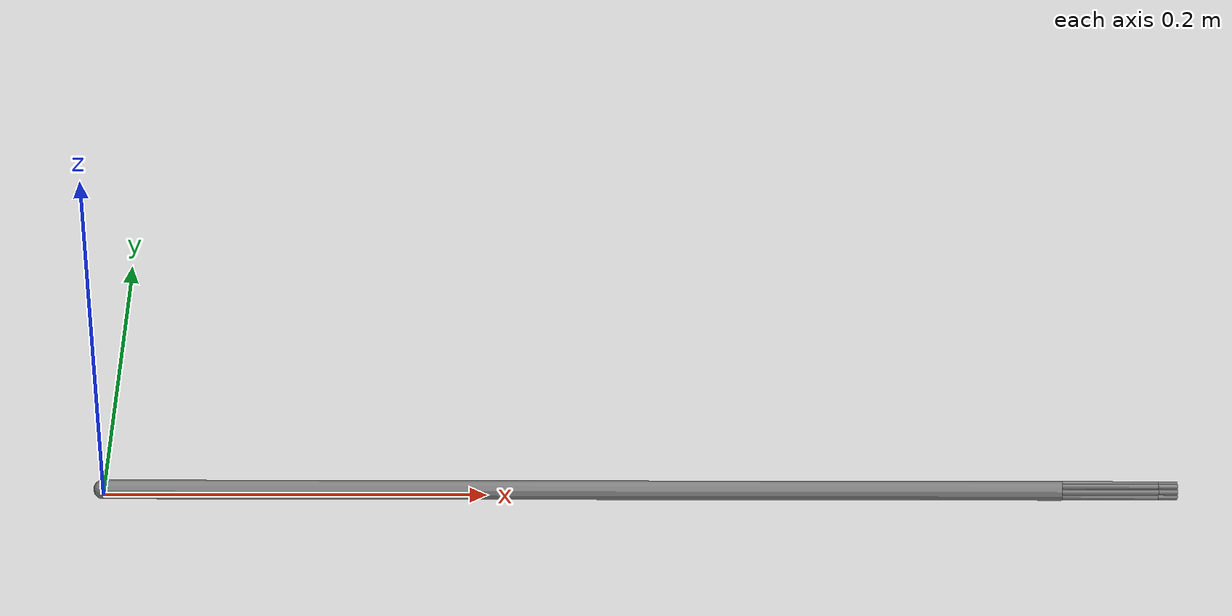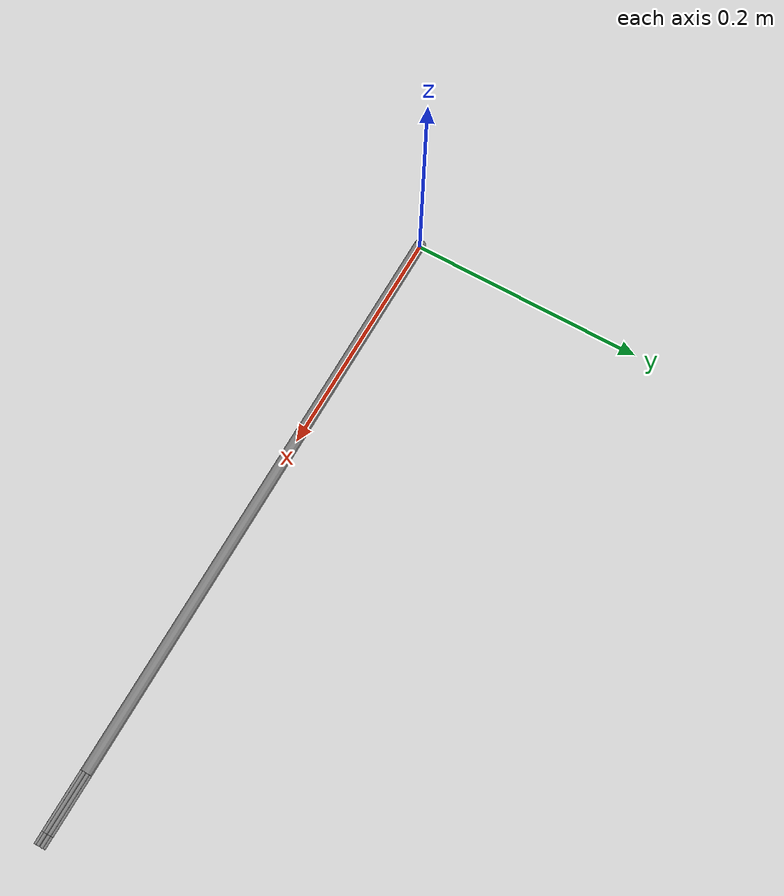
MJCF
<mujoco model="Assem_cable">
  <default>
    <default class="robot">
      <default class="motor">
        <joint />
        <motor />
      </default>
      <default class="visual">
        <geom material="visualgeom" contype="0" conaffinity="0" group="2" />
      </default>
      <default class="collision">
        <geom condim="3" contype="0" conaffinity="1" priority="1" group="1" solref="0.005 1" solimp="0.99 0.999 1e-05" friction="1 0.01 0.01" />
      </default>
    </default>
  </default>

  <compiler angle="radian" />

  <asset>
    <material name="black" rgba="0 0 0 1" />
    <material name="white" rgba="1 1 1 1" />
    <material name="copper" rgba="1 0.752941176470588 0.752941176470588 1" />
    <material name="brown" rgba="0.729411764705882 0.356862745098039 0.0235294117647059 1" />
    <material name="green" rgba="0 0.752941176470588 0 1" />
    <material name="red" rgba="1 0 0 1" />
    <material name="yellow" rgba="1 1 0 1" />
    <material name="blue" rgba="0 0.313725490196078 1 1" />

    <mesh name="base_link.STL" file="meshes/base_link.STL" />
    <mesh name="white_Link.STL" file="meshes/white_Link.STL" />
    <mesh name="c_white_Link.STL" file="meshes/c_white_Link.STL" />
    <mesh name="brown_Link.STL" file="meshes/brown_Link.STL" />
    <mesh name="c_brown_Link.STL" file="meshes/c_brown_Link.STL" />
    <mesh name="green_Link.STL" file="meshes/green_Link.STL" />
    <mesh name="c_green_Link.STL" file="meshes/c_green_Link.STL" />
    <mesh name="red_Link.STL" file="meshes/red_Link.STL" />
    <mesh name="c_red_Link.STL" file="meshes/c_red_Link.STL" />
    <mesh name="yellow_Link.STL" file="meshes/yellow_Link.STL" />
    <mesh name="c_yellow_Link.STL" file="meshes/c_yellow_Link.STL" />
    <mesh name="blue_Link.STL" file="meshes/blue_Link.STL" />
    <mesh name="c_blue_Link.STL" file="meshes/c_blue_Link.STL" />
    <mesh name="black_Link.STL" file="meshes/black_Link.STL" />
    <mesh name="c_black_Link.STL" file="meshes/c_black_Link.STL" />
  </asset>

  <worldbody>
    <body name="base_link" pos="0.00000000 0.00000000 0.00341225" quat="1 0 0 0" childclass="robot">
      <freejoint name="floating_base" />
      <geom name="base_link_collision" pos="0 0 0" quat="1.0 0.0 0.0 0.0" type="mesh" mesh="base_link.STL" class="collision" />
      <geom name="base_link_visual" pos="0 0 0" quat="1.0 0.0 0.0 0.0" material="black" type="mesh" mesh="base_link.STL" class="visual" />
      <body name="white_Link" pos="0.5 0.00218221437473327 0.00273641013422833" quat="0.8462268532257802 0.5328227781163207 0.0 0.0">
        <joint name="white_joint" type="hinge" ref="0.0" class="motor" axis="1 0 0" />
        <inertial pos="0.025 -4.3368E-19 -2.1684E-19" quat="1.0 0.0 0.0 0.0" mass="0.00035343" diaginertia="3.9761e-10 7.383e-08 7.383e-08" />
        <geom name="white_Link_collision" pos="0 0 0" quat="1.0 0.0 0.0 0.0" type="mesh" mesh="white_Link.STL" class="collision" />
        <geom name="white_Link_visual" pos="0 0 0" quat="1.0 0.0 0.0 0.0" material="white" type="mesh" mesh="white_Link.STL" class="visual" />
        <body name="c_white_Link" pos="0.05 0 0" quat="0.9751353459148078 0.22161014676139754 0.0 0.0">
          <joint name="c_white_joint" type="hinge" ref="0.0" class="motor" axis="1 0 0" />
          <inertial pos="0.0049865416098227 -2.68882138776405E-17 1.0842021724855E-17" quat="1.0 0.0 0.0 0.0" mass="6.14076644021682E-05" diaginertia="6.00447326004955e-11 5.39061211502602e-10 5.39061211502602e-10" />
          <geom name="c_white_Link_collision" pos="0 0 0" quat="1.0 0.0 0.0 0.0" type="mesh" mesh="c_white_Link.STL" class="collision" />
          <geom name="c_white_Link_visual" pos="0 0 0" quat="1.0 0.0 0.0 0.0" material="copper" type="mesh" mesh="c_white_Link.STL" class="visual" />
        </body>
      </body>
      <body name="brown_Link" pos="0.5 0.0035 0" quat="0.955512291536803 -0.294951285337236 0.0 0.0">
        <joint name="brown_joint" type="hinge" ref="0.0" class="motor" axis="1 0 0" />
        <inertial pos="0.025 -8.19656842399041E-17 8.23993651088983E-18" quat="1.0 0.0 0.0 0.0" mass="0.000353429173528853" diaginertia="3.9760782021996e-10 7.38298817286211e-08 7.38298817286211e-08" />
        <geom name="brown_Link_collision" pos="0 0 0" quat="1.0 0.0 0.0 0.0" type="mesh" mesh="brown_Link.STL" class="collision" />
        <geom name="brown_Link_visual" pos="0 0 0" quat="1.0 0.0 0.0 0.0" material="brown" type="mesh" mesh="brown_Link.STL" class="visual" />
        <body name="c_brown_Link" pos="0.05 0 0" quat="0.6008837159724685 -0.7993364497376044 0.0 0.0">
          <joint name="c_brown_joint" type="hinge" ref="0.0" class="motor" axis="1 0 0" />
          <inertial pos="0.00498654160982259 -5.5944832100252E-17 2.03830008427275E-17" quat="1.0 0.0 0.0 0.0" mass="6.14076644021682E-05" diaginertia="6.00447326004955e-11 5.39061211502601e-10 5.39061211502602e-10" />
          <geom name="c_brown_Link_collision" pos="0 0 0" quat="1.0 0.0 0.0 0.0" type="mesh" mesh="c_brown_Link.STL" class="collision" />
          <geom name="c_brown_Link_visual" pos="0 0 0" quat="1.0 0.0 0.0 0.0" material="copper" type="mesh" mesh="c_brown_Link.STL" class="visual" />
        </body>
      </body>
      <body name="green_Link" pos="0.5 0.00218221389713953 -0.00273641051509658" quat="0.7071067811865462 0.7071067811865488 0.0 0.0">
        <joint name="green_joint" type="hinge" ref="0.0" class="motor" axis="1 0 0" />
        <inertial pos="0.025 0 0" quat="1.0 0.0 0.0 0.0" mass="0.000353429173528853" diaginertia="3.9760782021996e-10 7.38298817286211e-08 7.38298817286211e-08" />
        <geom name="green_Link_collision" pos="0 0 0" quat="1.0 0.0 0.0 0.0" type="mesh" mesh="green_Link.STL" class="collision" />
        <geom name="green_Link_visual" pos="0 0 0" quat="1.0 0.0 0.0 0.0" material="green" type="mesh" mesh="green_Link.STL" class="visual" />
        <body name="c_green_Link" pos="0.05 0 0" quat="1.0 0.0 0.0 0.0">
          <joint name="c_green_joint" type="hinge" ref="0.0" class="motor" axis="1 0 0" />
          <inertial pos="0.0049865416098227 4.33680868994202E-19 -4.33680868994202E-19" quat="1.0 0.0 0.0 0.0" mass="6.14076644021682E-05" diaginertia="6.00447326004955e-11 5.39061211502602e-10 5.39061211502602e-10" />
          <geom name="c_green_Link_collision" pos="0 0 0" quat="1.0 0.0 0.0 0.0" type="mesh" mesh="c_green_Link.STL" class="collision" />
          <geom name="c_green_Link_visual" pos="0 0 0" quat="1.0 0.0 0.0 0.0" material="copper" type="mesh" mesh="c_green_Link.STL" class="visual" />
        </body>
      </body>
      <body name="red_Link" pos="0.5 -0.00077882369423966 -0.00341224759554328" quat="0.7071067811865462 0.7071067811865488 0.0 0.0">
        <joint name="red_joint" type="hinge" ref="0.0" class="motor" axis="1 0 0" />
        <inertial pos="0.025 0 -5.42101086242752E-19" quat="1.0 0.0 0.0 0.0" mass="0.000353429173528853" diaginertia="3.9760782021996e-10 7.38298817286211e-08 7.38298817286211e-08" />
        <geom name="red_Link_collision" pos="0 0 0" quat="1.0 0.0 0.0 0.0" type="mesh" mesh="red_Link.STL" class="collision" />
        <geom name="red_Link_visual" pos="0 0 0" quat="1.0 0.0 0.0 0.0" material="red" type="mesh" mesh="red_Link.STL" class="visual" />
        <body name="c_red_Link" pos="0.05 0 0" quat="1.0 0.0 0.0 0.0">
          <joint name="c_red_joint" type="hinge" ref="0.0" class="motor" axis="1 0 0" />
          <inertial pos="0.0049865416098227 -3.10949183068843E-16 -9.97465998686664E-18" quat="1.0 0.0 0.0 0.0" mass="6.14076644021682E-05" diaginertia="6.00447326004955e-11 5.39061211502602e-10 5.39061211502602e-10" />
          <geom name="c_red_Link_collision" pos="0 0 0" quat="1.0 0.0 0.0 0.0" type="mesh" mesh="c_red_Link.STL" class="collision" />
          <geom name="c_red_Link_visual" pos="0 0 0" quat="1.0 0.0 0.0 0.0" material="copper" type="mesh" mesh="c_red_Link.STL" class="visual" />
        </body>
      </body>
      <body name="yellow_Link" pos="0.5 -0.00315339118911246 -0.00151859277241396" quat="0.7071067811865462 0.7071067811865488 0.0 0.0">
        <joint name="yellow_joint" type="hinge" ref="0.0" class="motor" axis="1 0 0" />
        <inertial pos="0.025 0 4.33680868994202E-19" quat="1.0 0.0 0.0 0.0" mass="0.000353429173528853" diaginertia="3.9760782021996e-10 7.38298817286211e-08 7.38298817286211e-08" />
        <geom name="yellow_Link_collision" pos="0 0 0" quat="1.0 0.0 0.0 0.0" type="mesh" mesh="yellow_Link.STL" class="collision" />
        <geom name="yellow_Link_visual" pos="0 0 0" quat="1.0 0.0 0.0 0.0" material="yellow" type="mesh" mesh="yellow_Link.STL" class="visual" />
        <body name="c_yellow_Link" pos="0.05 0 0" quat="1.0 0.0 0.0 0.0">
          <joint name="c_yellow_joint" type="hinge" ref="0.0" class="motor" axis="1 0 0" />
          <inertial pos="0.0049865416098227 2.35705552298349E-16 4.7271214720368E-17" quat="1.0 0.0 0.0 0.0" mass="6.14076644021682E-05" diaginertia="6.00447326004955e-11 5.39061211502602e-10 5.39061211502602e-10" />
          <geom name="c_yellow_Link_collision" pos="0 0 0" quat="1.0 0.0 0.0 0.0" type="mesh" mesh="c_yellow_Link.STL" class="collision" />
          <geom name="c_yellow_Link_visual" pos="0 0 0" quat="1.0 0.0 0.0 0.0" material="copper" type="mesh" mesh="c_yellow_Link.STL" class="visual" />
        </body>
      </body>
      <body name="blue_Link" pos="0.5 -0.00315339092406795 0.00151859332278458" quat="0.7071067811865462 0.7071067811865488 0.0 0.0">
        <joint name="blue_joint" type="hinge" ref="0.0" class="motor" axis="1 0 0" />
        <inertial pos="0.025 -2.16840434497101E-19 -4.33680868994202E-19" quat="1.0 0.0 0.0 0.0" mass="0.000353429173528853" diaginertia="3.9760782021996e-10 7.38298817286211e-08 7.38298817286211e-08" />
        <geom name="blue_Link_collision" pos="0 0 0" quat="1.0 0.0 0.0 0.0" type="mesh" mesh="blue_Link.STL" class="collision" />
        <geom name="blue_Link_visual" pos="0 0 0" quat="1.0 0.0 0.0 0.0" material="blue" type="mesh" mesh="blue_Link.STL" class="visual" />
        <body name="c_blue_Link" pos="0.05 0 0" quat="1.0 0.0 0.0 0.0">
          <joint name="c_blue_joint" type="hinge" ref="0.0" class="motor" axis="1 0 0" />
          <inertial pos="0.0049865416098227 1.45283091113058E-17 1.38777878078145E-17" quat="1.0 0.0 0.0 0.0" mass="6.14076644021682E-05" diaginertia="6.00447326004955e-11 5.39061211502602e-10 5.39061211502602e-10" />
          <geom name="c_blue_Link_collision" pos="0 0 0" quat="1.0 0.0 0.0 0.0" type="mesh" mesh="c_blue_Link.STL" class="collision" />
          <geom name="c_blue_Link_visual" pos="0 0 0" quat="1.0 0.0 0.0 0.0" material="copper" type="mesh" mesh="c_blue_Link.STL" class="visual" />
        </body>
      </body>
      <body name="black_Link" pos="0.5 -0.000778823098690045 0.00341224773147362" quat="0.7071067811865462 0.7071067811865488 0.0 0.0">
        <joint name="black_joint" type="hinge" ref="0.0" class="motor" axis="1 0 0" />
        <inertial pos="0.025 0 -3.25260651745651E-19" quat="1.0 0.0 0.0 0.0" mass="0.000353429173528853" diaginertia="3.9760782021996e-10 7.38298817286211e-08 7.38298817286211e-08" />
        <geom name="black_Link_collision" pos="0 0 0" quat="1.0 0.0 0.0 0.0" type="mesh" mesh="black_Link.STL" class="collision" />
        <geom name="black_Link_visual" pos="0 0 0" quat="1.0 0.0 0.0 0.0" material="black" type="mesh" mesh="black_Link.STL" class="visual" />
        <body name="c_black_Link" pos="0.05 0 0" quat="1.0 0.0 0.0 0.0">
          <joint name="c_black_joint" type="hinge" ref="0.0" class="motor" axis="1 0 0" />
          <inertial pos="0.0049865416098227 3.25260651745651E-17 -5.42101086242752E-18" quat="1.0 0.0 0.0 0.0" mass="6.14076644021682E-05" diaginertia="6.00447326004955e-11 5.39061211502602e-10 5.39061211502602e-10" />
          <geom name="c_black_Link_collision" pos="0 0 0" quat="1.0 0.0 0.0 0.0" type="mesh" mesh="c_black_Link.STL" class="collision" />
          <geom name="c_black_Link_visual" pos="0 0 0" quat="1.0 0.0 0.0 0.0" material="copper" type="mesh" mesh="c_black_Link.STL" class="visual" />
        </body>
      </body>
      <site name="base_link_site" pos="0 0 0" quat="1 0 0 0" />
      <camera name="front_camera" mode="track" fovy="90.0" quat="4.329780281177467e-17 4.329780281177466e-17 0.7071067811865475 0.7071067811865476" pos="0.0 2.0 0.5" />
      <camera name="side_camera" mode="track" fovy="90.0" quat="-0.5 -0.4999999999999999 0.5 0.5000000000000001" pos="-2.0 0.0 0.5" />
    </body>
  </worldbody>

  <actuator>
    <motor name="white_joint_ctrl" joint="white_joint" class="motor" />
    <motor name="c_white_joint_ctrl" joint="c_white_joint" class="motor" />
    <motor name="brown_joint_ctrl" joint="brown_joint" class="motor" />
    <motor name="c_brown_joint_ctrl" joint="c_brown_joint" class="motor" />
    <motor name="green_joint_ctrl" joint="green_joint" class="motor" />
    <motor name="c_green_joint_ctrl" joint="c_green_joint" class="motor" />
    <motor name="red_joint_ctrl" joint="red_joint" class="motor" />
    <motor name="c_red_joint_ctrl" joint="c_red_joint" class="motor" />
    <motor name="yellow_joint_ctrl" joint="yellow_joint" class="motor" />
    <motor name="c_yellow_joint_ctrl" joint="c_yellow_joint" class="motor" />
    <motor name="blue_joint_ctrl" joint="blue_joint" class="motor" />
    <motor name="c_blue_joint_ctrl" joint="c_blue_joint" class="motor" />
    <motor name="black_joint_ctrl" joint="black_joint" class="motor" />
    <motor name="c_black_joint_ctrl" joint="c_black_joint" class="motor" />
  </actuator>

  <contact>
    <exclude body1="base_link" body2="white_Link" />
    <exclude body1="white_Link" body2="c_white_Link" />
    <exclude body1="base_link" body2="brown_Link" />
    <exclude body1="brown_Link" body2="c_brown_Link" />
    <exclude body1="base_link" body2="green_Link" />
    <exclude body1="green_Link" body2="c_green_Link" />
    <exclude body1="base_link" body2="red_Link" />
    <exclude body1="red_Link" body2="c_red_Link" />
    <exclude body1="base_link" body2="yellow_Link" />
    <exclude body1="yellow_Link" body2="c_yellow_Link" />
    <exclude body1="base_link" body2="blue_Link" />
    <exclude body1="blue_Link" body2="c_blue_Link" />
    <exclude body1="base_link" body2="black_Link" />
    <exclude body1="black_Link" body2="c_black_Link" />
  </contact>

  <sensor>
    <framepos name="base_link_site_pos" objtype="site" objname="base_link_site" />
    <framequat name="base_link_site_quat" objtype="site" objname="base_link_site" />
    <framelinvel name="base_link_site_linvel" objtype="site" objname="base_link_site" />
    <frameangvel name="base_link_site_angvel" objtype="site" objname="base_link_site" />
    <velocimeter name="base_link_site_vel" site="base_link_site" />
  </sensor>
</mujoco>
